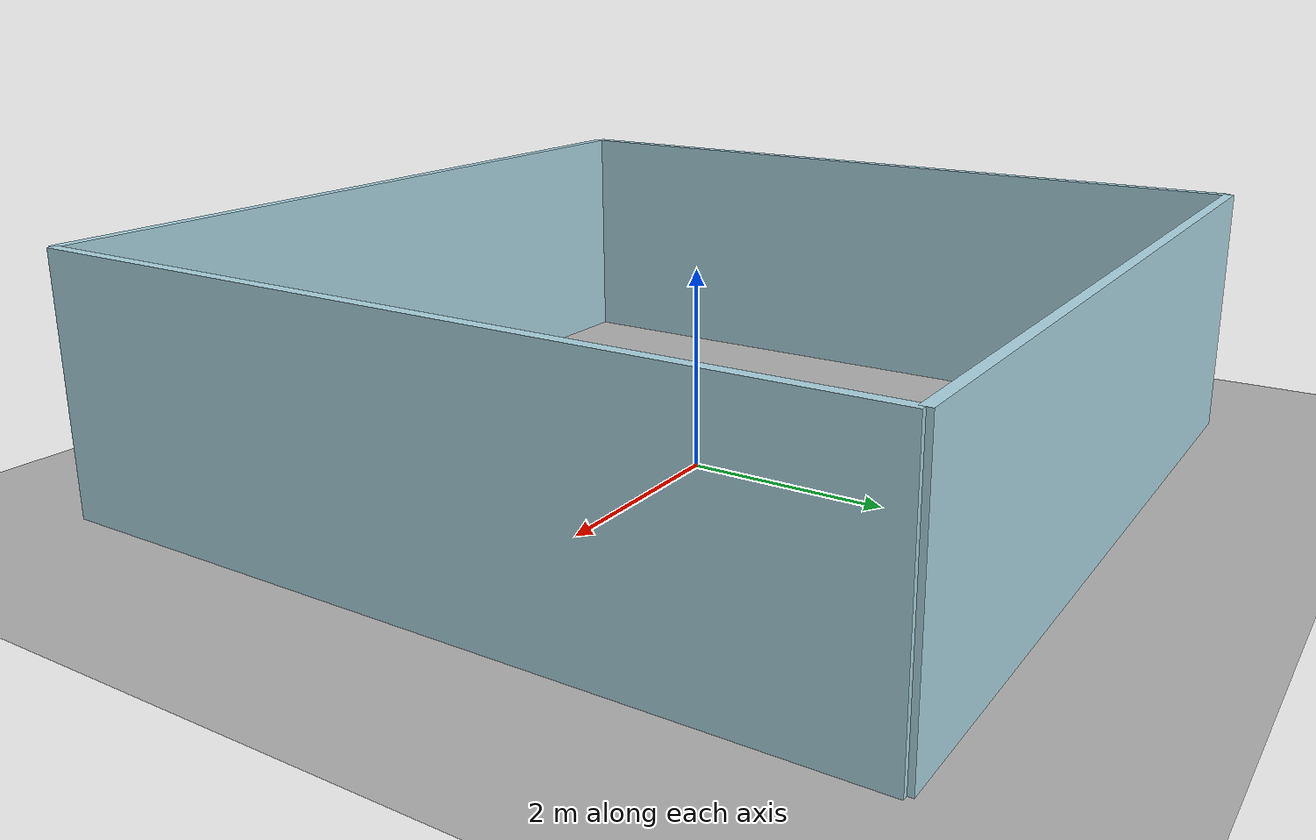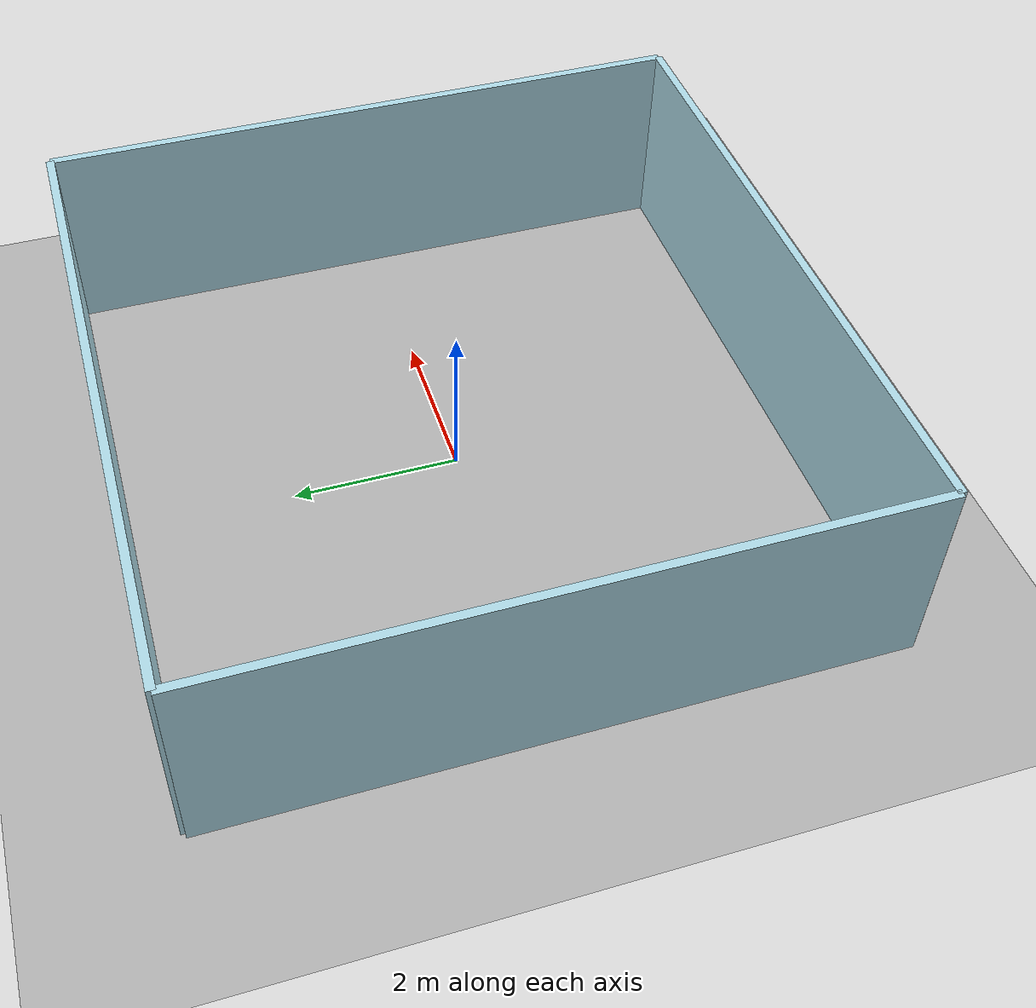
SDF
<?xml version="1.0"?>
<sdf version="1.10">
  <world name="room_world">
    <!-- Scene tone + shadows (like empty.world) -->
    <scene>
      <ambient>0.4 0.4 0.4 1</ambient>
      <background>0.7 0.7 0.7 1</background>
      <shadows>true</shadows>
    </scene>

    <light name="sun" type="directional">
      <cast_shadows>true</cast_shadows>
      <diffuse>1 1 1 1</diffuse>
      <specular>0.2 0.2 0.2 1</specular>
      <direction>-0.5 0.5 -1</direction>
      <attenuation>
        <range>200</range>
        <constant>1.0</constant>
        <linear>0.0</linear>
        <quadratic>0.001</quadratic>
      </attenuation>
    </light>

    <!-- Simple floor: no Fuel dependency -->
    <model name="floor">
      <static>true</static>
      <link name="floor_link">
        <collision name="col">
          <geometry>
            <plane>
              <normal>0 0 1</normal>
              <size>50 50</size>
            </plane>
          </geometry>
          <surface>
            <contact />
            <friction />
          </surface>
        </collision>
        <visual name="vis">
          <geometry>
            <plane>
              <normal>0 0 1</normal>
              <size>50 50</size>
            </plane>
          </geometry>
          <material>
            <ambient>0.7 0.7 0.7 1</ambient>
            <diffuse>0.7 0.7 0.7 1</diffuse>
          </material>
        </visual>
      </link>
    </model>

    <!-- 8x8 m room walls -->
    <model name="room_8x8">
      <static>true</static>

      <link name="wall_north">
        <pose>0 4 1.25 0 0 0</pose>
        <collision name="col">
          <geometry>
            <box>
              <size>8 0.1 2.5</size>
            </box>
          </geometry>
        </collision>
        <visual name="vis">
          <geometry>
            <box>
              <size>8 0.1 2.5</size>
            </box>
          </geometry>
          <material>
            <ambient>0.68 0.85 0.9 1</ambient>
            <diffuse>0.68 0.85 0.9 1</diffuse>
            <specular>0.2 0.2 0.2 1</specular>
          </material>
        </visual>
      </link>

      <link name="wall_south">
        <pose>0 -4 1.25 0 0 0</pose>
        <collision name="col">
          <geometry>
            <box>
              <size>8 0.1 2.5</size>
            </box>
          </geometry>
        </collision>
        <visual name="vis">
          <geometry>
            <box>
              <size>8 0.1 2.5</size>
            </box>
          </geometry>
          <material>
            <ambient>0.68 0.85 0.9 1</ambient>
            <diffuse>0.68 0.85 0.9 1</diffuse>
            <specular>0.2 0.2 0.2 1</specular>
          </material>
        </visual>
      </link>

      <link name="wall_east">
        <pose>4 0 1.25 0 0 0</pose>
        <collision name="col">
          <geometry>
            <box>
              <size>0.1 8 2.5</size>
            </box>
          </geometry>
        </collision>
        <visual name="vis">
          <geometry>
            <box>
              <size>0.1 8 2.5</size>
            </box>
          </geometry>
          <material>
            <ambient>0.68 0.85 0.9 1</ambient>
            <diffuse>0.68 0.85 0.9 1</diffuse>
            <specular>0.2 0.2 0.2 1</specular>
          </material>
        </visual>
      </link>

      <link name="wall_west">
        <pose>-4 0 1.25 0 0 0</pose>
        <collision name="col">
          <geometry>
            <box>
              <size>0.1 8 2.5</size>
            </box>
          </geometry>
        </collision>
        <visual name="vis">
          <geometry>
            <box>
              <size>0.1 8 2.5</size>
            </box>
          </geometry>
          <material>
            <ambient>0.68 0.85 0.9 1</ambient>
            <diffuse>0.68 0.85 0.9 1</diffuse>
            <specular>0.2 0.2 0.2 1</specular>
          </material>
        </visual>
      </link>
    </model>
  </world>
</sdf>
